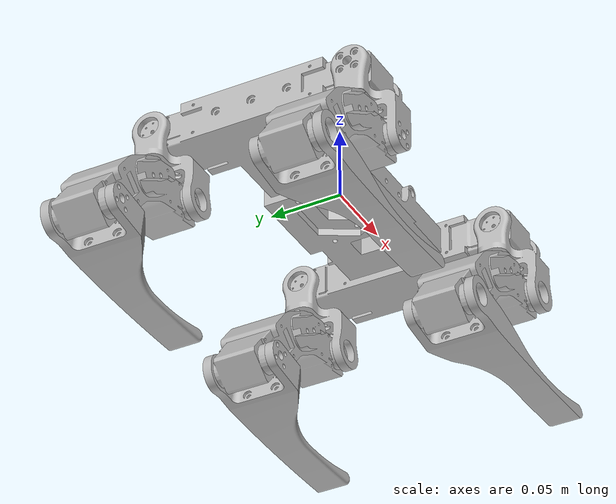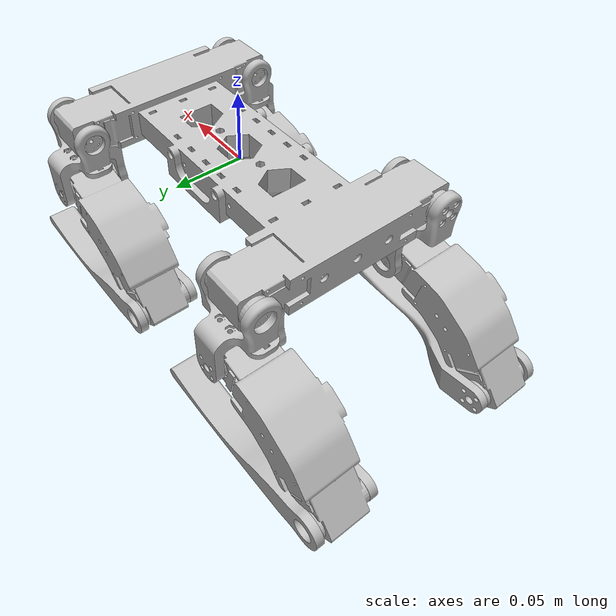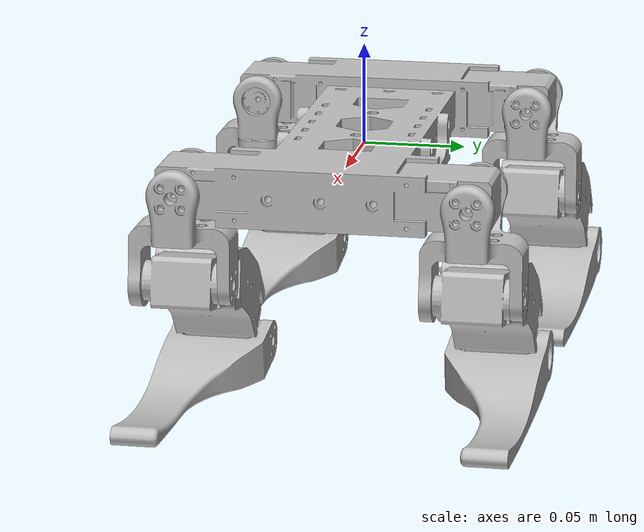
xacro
<?xml version="1.0"?>
<robot xmlns:xacro="http://www.ros.org/wiki/xacro" >
  <xacro:include filename="base.xacro"/>
  <xacro:include filename="front_left_limb.xacro"/>
  <xacro:include filename="front_right_limb.xacro"/>
  <xacro:include filename="back_left_limb.xacro"/>
  <xacro:include filename="back_right_limb.xacro"/>
</robot>

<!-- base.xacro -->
<robot xmlns:xacro="http://www.ros.org/wiki/xacro" >
  <link name="base_link"/>

  <link name="base_footprint">
    <inertial>
      <origin xyz="0 0 -0.0003" rpy="0 0 0" />
      <mass value="0.5" />
      <inertia  ixx="0.0011072933516694948" ixy="0" ixz="0" iyy="0.0022392243210121506" iyz="0" izz="0.003276402523929809" />
    </inertial>
    <visual>
      <origin
        xyz="0 0 0"
        rpy="0 0 0" />
      <geometry>
        <mesh
          filename="package://clifford_gazebo/meshes/base_footprint.STL" />
      </geometry>
      <material
        name="">
        <color
          rgba="0.75294 0.75294 0.75294 1" />
      </material>
    </visual>
    <collision>
      <origin
        xyz="0 0 0"
        rpy="0 0 0" />
      <geometry>
        <mesh
          filename="package://clifford_gazebo/meshes/base_footprint.STL" />
      </geometry>
    </collision>
  </link>

  <gazebo reference="base_footprint">
    <material>Gazebo/Orange</material>
    <gravity>1</gravity>
    <selfCollide>1</selfCollide>
  </gazebo>

  <joint name="base_joint" type="fixed">
    <origin xyz="0.0 0.0 0.0" rpy="0.0 0.0 0.0"/>
    <parent link="base_link"/>
    <child link="base_footprint"/>
    <axis xyz="0.0 0.0 0.0"/>
  </joint>
</robot>

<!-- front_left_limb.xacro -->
<robot xmlns:xacro="http://www.ros.org/wiki/xacro" >
  <link name="front_left_wrist">
    <inertial>
      <origin xyz="0.001195 0.00015872 -0.022211" rpy="0 0 0" />
      <mass value="0.4" />
      <inertia  ixx="0.0002575811927139552" ixy="0" ixz="0" iyy="0.00027465080011192705" iyz="0" izz="0.00017733037586504426" />
    </inertial>
    <visual>
      <origin
        xyz="0 0 0"
        rpy="0 0 0" />
      <geometry>
        <mesh
          filename="package://clifford_gazebo/meshes/front_left_wrist.STL" />
      </geometry>
      <material
        name="">
        <color
          rgba="0.75294 0.75294 0.75294 1" />
      </material>
    </visual>
    <collision>
      <origin
        xyz="0 0 0"
        rpy="0 0 0" />
      <geometry>
        <mesh
          filename="package://clifford_gazebo/meshes/front_left_wrist.STL" />
      </geometry>
    </collision>
  </link>

  <joint
    name="front_left_wrist_joint"
    type="revolute">
    <origin
      xyz="0.095875 0.070109 -0.00014342"
      rpy="0 0 0" />
    <parent
      link="base_footprint" />
    <child
      link="front_left_wrist" />
    <axis
      xyz="-1 0 0" />
    <limit
      lower="-2.618"
      upper="2.618"
      effort="1.5"
      velocity="10.5" />
    <dynamics damping="0.9" friction="0.9" />
  </joint>

  <link name="front_left_leg">
    <inertial>
      <origin xyz="0.02029 0.00051522 -0.049743" rpy="0 0 0" />
      <mass value="0.5" />
      <inertia  ixx="0.0006601698078507005" ixy="0" ixz="0" iyy="0.0008625781128657934" iyz="0" izz="0.0003789841729590441" />
    </inertial>
    <visual>
      <origin
        xyz="0 0 0"
        rpy="0 0 0" />
      <geometry>
        <mesh
          filename="package://clifford_gazebo/meshes/front_left_leg.STL" />
      </geometry>
      <material
        name="">
        <color
          rgba="0.75294 0.75294 0.75294 1" />
      </material>
    </visual>
    <collision>
      <origin
        xyz="0 0 0"
        rpy="0 0 0" />
      <geometry>
        <mesh
          filename="package://clifford_gazebo/meshes/front_left_leg.STL" />
      </geometry>
    </collision>
  </link>

  <joint
    name="front_left_leg_joint"
    type="revolute">
    <origin
      xyz="2.4999E-05 -6.4091E-05 -0.048"
      rpy="0 1.5708 0" />
    <parent
      link="front_left_wrist" />
    <child
      link="front_left_leg" />
    <axis
      xyz="0.0006745 1 0" />
    <limit
      lower="-2.618"
      upper="2.618"
      effort="1.5"
      velocity="10.5" />
    <dynamics damping="0.9" friction="0.9" />
  </joint>

  <link name="front_left_foot">
    <inertial>
      <origin xyz="-0.0061407 0.0056659 -0.049828" rpy="0 0 0" />
      <mass value="0.4" />
      <inertia  ixx="0.0008779825495322561" ixy="0" ixz="0" iyy="0.0008219382925804376" iyz="0" izz="0.00010416055248159151" />
    </inertial>
    <visual>
      <origin
        xyz="0 0 0"
        rpy="0 0 0" />
      <geometry>
        <mesh
          filename="package://clifford_gazebo/meshes/front_left_foot.STL" />
      </geometry>
      <material
        name="">
        <color
          rgba="0.75294 0.75294 0.75294 1" />
      </material>
    </visual>
    <collision>
      <origin
        xyz="0 0 0"
        rpy="0 0 0" />
      <geometry>
        <mesh
          filename="package://clifford_gazebo/meshes/front_left_foot.STL" />
      </geometry>
    </collision>
  </link>

  <joint name="front_left_foot_joint" type="revolute">
    <origin
      xyz="0.055376 -4.5095E-05 -0.090425"
      rpy="3.1416 0 3.1416" />
    <parent
      link="front_left_leg" />
    <child
      link="front_left_foot" />
    <axis
      xyz="-0.00081441 1 0" />
    <limit
      lower="-2.618"
      upper="2.618"
      effort="1.5"
      velocity="10.5" />
    <dynamics damping="0.9" friction="0.9" />
  </joint>

  <gazebo reference="front_left_wrist">
    <material>Gazebo/Green</material>
    <gravity>1</gravity>
    <selfCollide>1</selfCollide>
  </gazebo>

  <gazebo reference="front_left_leg">
    <material>Gazebo/Black</material>
    <gravity>1</gravity>
    <selfCollide>1</selfCollide>
  </gazebo>

  <gazebo reference="front_left_foot">
    <material>Gazebo/Green</material>
    <gravity>1</gravity>
    <selfCollide>1</selfCollide>
    <mu1>1000.5</mu1>
    <mu2>1000.5</mu2>
    <kp>1000.5</kp>
    <kd>1000.5</kd>
  </gazebo>
</robot>

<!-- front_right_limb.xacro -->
<robot xmlns:xacro="http://www.ros.org/wiki/xacro" >
  <link name="front_right_wrist">
    <inertial>
      <origin xyz="0.001145 0.00015872 -0.022211" rpy="0 0 0" />
      <mass value="0.4" />
      <inertia  ixx="0.0002575811927139552" ixy="0" ixz="0" iyy="0.00027465080011192705" iyz="0" izz="0.00017733037586504426" />
    </inertial>
    <visual>
      <origin
        xyz="0 0 0"
        rpy="0 0 0" />
      <geometry>
        <mesh
          filename="package://clifford_gazebo/meshes/front_right_wrist.STL" />
      </geometry>
      <material
        name="">
        <color
          rgba="0.75294 0.75294 0.75294 1" />
      </material>
    </visual>
    <collision>
      <origin
        xyz="0 0 0"
        rpy="0 0 0" />
      <geometry>
        <mesh
          filename="package://clifford_gazebo/meshes/front_right_wrist.STL" />
      </geometry>
    </collision>
  </link>

  <joint
    name="front_right_wrist_joint"
    type="revolute">
    <origin
      xyz="0.095875 -0.070091 0.00015658"
      rpy="0 0 0" />
    <parent
      link="base_footprint" />
    <child
      link="front_right_wrist" />
    <axis
      xyz="-1 0 0" />
    <limit
      lower="-2.618"
      upper="2.618"
      effort="1.5"
      velocity="10.5" />
    <dynamics damping="0.9" friction="0.9" />
  </joint>

  <link name="front_right_leg">
    <inertial>
      <origin xyz="0.02029 0.00051522 -0.049743" rpy="0 0 0" />
      <mass value="0.5" />
      <inertia  ixx="0.0006601698078507005" ixy="0" ixz="0" iyy="0.0008625781128657934" iyz="0" izz="0.0003789841729590441" />
    </inertial>
    <visual>
      <origin
        xyz="0 0 0"
        rpy="0 0 0" />
      <geometry>
        <mesh
          filename="package://clifford_gazebo/meshes/front_right_leg.STL" />
      </geometry>
      <material
        name="">
        <color
          rgba="0.75294 0.75294 0.75294 1" />
      </material>
    </visual>
    <collision>
      <origin
        xyz="0 0 0"
        rpy="0 0 0" />
      <geometry>
        <mesh
          filename="package://clifford_gazebo/meshes/front_right_leg.STL" />
      </geometry>
    </collision>
  </link>

  <joint
    name="front_right_leg_joint"
    type="revolute">
    <origin
      xyz="-2.5E-05 -6.4091E-05 -0.048"
      rpy="0 1.5708 0" />
    <parent
      link="front_right_wrist" />
    <child
      link="front_right_leg" />
    <axis
      xyz="0.00081441 1 0" />
    <limit
      lower="-2.618"
      upper="2.618"
      effort="1.5"
      velocity="10.5" />
    <dynamics damping="0.9" friction="0.9" />
  </joint>

  <link name="front_right_foot">
    <inertial>
      <origin xyz="-0.0061406 -0.0056159 -0.049828" rpy="0 0 0" />
      <mass value="0.4" />
      <inertia  ixx="0.0008779782398059858" ixy="0" ixz="0" iyy="0.0008219879283309588" iyz="0" izz="0.00010420587850584241" />
    </inertial>
    <visual>
      <origin
        xyz="0 0 0"
        rpy="0 0 0" />
      <geometry>
        <mesh
          filename="package://clifford_gazebo/meshes/front_right_foot.STL" />
      </geometry>
      <material
        name="">
        <color
          rgba="0.75294 0.75294 0.75294 1" />
      </material>
    </visual>
    <collision>
      <origin
        xyz="0 0 0"
        rpy="0 0 0" />
      <geometry>
        <mesh
          filename="package://clifford_gazebo/meshes/front_right_foot.STL" />
      </geometry>
    </collision>
  </link>

  <joint
    name="front_right_foot_joint"
    type="revolute">
    <origin
      xyz="0.055376 -4.5095E-05 -0.090425"
      rpy="3.1416 0 3.1416" />
    <parent
      link="front_right_leg" />
    <child
      link="front_right_foot" />
    <axis
      xyz="-0.00081441 1 0" />
    <limit
      lower="-2.618"
      upper="2.618"
      effort="1.5"
      velocity="10.5" />
    <dynamics damping="0.9" friction="0.9" />
  </joint>

  <gazebo reference="front_right_wrist">
    <material>Gazebo/Red</material>
    <gravity>1</gravity>
    <selfCollide>1</selfCollide>
  </gazebo>

  <gazebo reference="front_right_leg">
    <material>Gazebo/Black</material>
    <gravity>1</gravity>
    <selfCollide>1</selfCollide>
  </gazebo>

  <gazebo reference="front_right_foot">
    <material>Gazebo/Red</material>
    <gravity>1</gravity>
    <selfCollide>1</selfCollide>
    <mu1>1000.5</mu1>
    <mu2>1000.5</mu2>
    <kp>1000.5</kp>
    <kd>1000.5</kd>
  </gazebo>
</robot>

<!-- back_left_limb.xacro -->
<robot xmlns:xacro="http://www.ros.org/wiki/xacro" >
  <link name="back_left_wrist">
    <inertial>
      <origin xyz="0.001195 0.00015872 -0.022211" rpy="0 0 0" />
      <mass value="0.4" />
      <inertia  ixx="0.0002575811927139552" ixy="0" ixz="0" iyy="0.00027465080011192705" iyz="0" izz="0.00017733037586504426" />
    </inertial>
    <visual>
      <origin
        xyz="0 0 0"
        rpy="0 0 0" />
      <geometry>
        <mesh
          filename="package://clifford_gazebo/meshes/back_left_wrist.STL" />
      </geometry>
      <material
        name="">
        <color
          rgba="0.75294 0.75294 0.75294 1" />
      </material>
    </visual>
    <collision>
      <origin
        xyz="0 0 0"
        rpy="0 0 0" />
      <geometry>
        <mesh
          filename="package://clifford_gazebo/meshes/back_left_wrist.STL" />
      </geometry>
    </collision>
  </link>

  <joint
    name="back_left_wrist_joint"
    type="revolute">
    <origin
      xyz="-0.095875 0.070091 0.00015658"
      rpy="0 0 0" />
    <parent
      link="base_footprint" />
    <child
      link="back_left_wrist" />
    <axis
      xyz="1 0 0" />
    <limit
      lower="-2.618"
      upper="2.618"
      effort="1.5"
      velocity="10.5" />
    <dynamics damping="0.9" friction="0.9" />
  </joint>

  <link
    name="back_left_leg">
    <inertial>
      <origin
        xyz="0.02029 0.00051522 -0.049743"
        rpy="0 0 0" />
      <mass value="0.5" />
      <inertia  ixx="0.0006601698078507005" ixy="0" ixz="0" iyy="0.0008625781128657934" iyz="0" izz="0.0003789841729590441" />
    </inertial>
    <visual>
      <origin
        xyz="0 0 0"
        rpy="0 0 0" />
      <geometry>
        <mesh
          filename="package://clifford_gazebo/meshes/back_left_leg.STL" />
      </geometry>
      <material
        name="">
        <color
          rgba="0.75294 0.75294 0.75294 1" />
      </material>
    </visual>
    <collision>
      <origin
        xyz="0 0 0"
        rpy="0 0 0" />
      <geometry>
        <mesh
          filename="package://clifford_gazebo/meshes/back_left_leg.STL" />
      </geometry>
    </collision>
  </link>
  <joint
    name="back_left_leg_joint"
    type="revolute">
    <origin
      xyz="2.4999E-05 -6.4091E-05 -0.048"
      rpy="0 1.5708 0" />
    <parent
      link="back_left_wrist" />
    <child
      link="back_left_leg" />
    <axis
      xyz="0.00081441 1 0" />
    <limit
      lower="-2.618"
      upper="2.618"
      effort="1.5"
      velocity="10.5" />
    <dynamics damping="0.9" friction="0.9" />
  </joint>

  <link name="back_left_foot">
    <inertial>
      <origin xyz="-0.0061406 0.0056159 -0.049828" rpy="0 0 0" />
      <mass value="0.4" />
      <inertia  ixx="0.0008779825495322561" ixy="0" ixz="0" iyy="0.0008219382925804376" iyz="0" izz="0.00010416055248159151" />
    </inertial>
    <visual>
      <origin
        xyz="0 0 0"
        rpy="0 0 0" />
      <geometry>
        <mesh
          filename="package://clifford_gazebo/meshes/back_left_foot.STL" />
      </geometry>
      <material
        name="">
        <color
          rgba="0.75294 0.75294 0.75294 1" />
      </material>
    </visual>
    <collision>
      <origin
        xyz="0 0 0"
        rpy="0 0 0" />
      <geometry>
        <mesh
          filename="package://clifford_gazebo/meshes/back_left_foot.STL" />
      </geometry>
    </collision>
  </link>
  <joint
    name="back_left_foot_joint"
    type="revolute">
    <origin
      xyz="0.055376 -4.5095E-05 -0.090425"
      rpy="3.1416 0 3.1416" />
    <parent
      link="back_left_leg" />
    <child
      link="back_left_foot" />
    <axis
      xyz="-0.00081441 1 0" />
    <limit
      lower="-2.618"
      upper="2.618"
      effort="1.5"
      velocity="10.5" />
    <dynamics damping="0.9" friction="0.9" />
  </joint>

  <gazebo reference="back_left_wrist">
    <material>Gazebo/Purple</material>
    <gravity>1</gravity>
    <selfCollide>1</selfCollide>
  </gazebo>

  <gazebo reference="back_left_leg">
    <material>Gazebo/Black</material>
    <gravity>1</gravity>
    <selfCollide>1</selfCollide>
  </gazebo>

  <gazebo reference="back_left_foot">
    <material>Gazebo/Purple</material>
    <gravity>1</gravity>
    <selfCollide>1</selfCollide>
    <mu1>1000.5</mu1>
    <mu2>1000.5</mu2>
    <kp>1000.5</kp>
    <kd>1000.5</kd>
  </gazebo>
</robot>

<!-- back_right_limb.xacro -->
<robot xmlns:xacro="http://www.ros.org/wiki/xacro" >
  <link name="back_right_wrist">
    <inertial>
      <origin xyz="-0.001195 -0.0001949 -0.02221" rpy="0 0 0" />
      <mass value="0.4" />
      <inertia  ixx="0.0002577449173061704" ixy="0" ixz="0" iyy="0.0002748211730214112" iyz="0" izz="0.00017732372754777532" />
    </inertial>
    <visual>
      <origin
        xyz="0 0 0"
        rpy="0 0 0" />
      <geometry>
        <mesh
          filename="package://clifford_gazebo/meshes/back_right_wrist.STL" />
      </geometry>
      <material
        name="">
        <color
          rgba="0.75294 0.75294 0.75294 1" />
      </material>
    </visual>
    <collision>
      <origin
        xyz="0 0 0"
        rpy="0 0 0" />
      <geometry>
        <mesh
          filename="package://clifford_gazebo/meshes/back_right_wrist.STL" />
      </geometry>
    </collision>
  </link>

  <joint
    name="back_right_wrist_joint"
    type="revolute">
    <origin
      xyz="-0.095875 -0.070109 0.00015658"
      rpy="0 0 0" />
    <parent
      link="base_footprint" />
    <child
      link="back_right_wrist" />
    <axis
      xyz="-1 0 0" />
    <limit
      lower="-2.618"
      upper="2.618"
      effort="1.5"
      velocity="10.5" />
    <dynamics damping="0.9" friction="0.9" />
  </joint>

  <link name="back_right_leg">
    <inertial>
      <origin xyz="0.020216 0.00051528 -0.049773" rpy="0 0 0" />
      <mass value="0.5" />
      <inertia  ixx="0.0006608284339635455" ixy="0" ixz="0" iyy="0.0008622624687228709" iyz="0" izz="0.0003780096169014544" />
    </inertial>
    <visual>
      <origin
        xyz="0 0 0"
        rpy="0 0 0" />
      <geometry>
        <mesh
          filename="package://clifford_gazebo/meshes/back_right_leg.STL" />
      </geometry>
      <material
        name="">
        <color
          rgba="0.75294 0.75294 0.75294 1" />
      </material>
    </visual>
    <collision>
      <origin
        xyz="0 0 0"
        rpy="0 0 0" />
      <geometry>
        <mesh
          filename="package://clifford_gazebo/meshes/back_right_leg.STL" />
      </geometry>
    </collision>
  </link>
  <joint
    name="back_right_leg_joint"
    type="revolute">
    <origin
      xyz="-2.4999E-05 -1.4092E-05 -0.048"
      rpy="0 1.5708 0" />
    <parent
      link="back_right_wrist" />
    <child
      link="back_right_leg" />
    <axis
      xyz="0.00081441 1 0" />
    <limit
      lower="-2.618"
      upper="2.618"
      effort="1.5"
      velocity="10.5" />
    <dynamics damping="0.9" friction="0.9" />
  </joint>

  <link name="back_right_foot">
    <inertial>
      <origin xyz="-0.0061315 -0.0056259 -0.049828" rpy="0 0 0" />
      <mass value="0.4" />
      <inertia  ixx="0.0008779782398059858" ixy="0" ixz="0" iyy="0.0008219879283309588" iyz="0" izz="0.00010420587850584241" />
    </inertial>
    <visual>
      <origin
        xyz="0 0 0"
        rpy="0 0 0" />
      <geometry>
        <mesh
          filename="package://clifford_gazebo/meshes/back_right_foot.STL" />
      </geometry>
      <material
        name="">
        <color
          rgba="0.75294 0.75294 0.75294 1" />
      </material>
    </visual>
    <collision>
      <origin
        xyz="0 0 0"
        rpy="0 0 0" />
      <geometry>
        <mesh
          filename="package://clifford_gazebo/meshes/back_right_foot.STL" />
      </geometry>
    </collision>
  </link>

  <joint
    name="back_right_foot_joint"
    type="revolute">
    <origin
      xyz="0.055242 -4.4986E-05 -0.090507"
      rpy="3.1416 0 3.1416" />
    <parent
      link="back_right_leg" />
    <child
      link="back_right_foot" />
    <axis
      xyz="-0.00081441 1 0" />
    <limit
      lower="-2.618"
      upper="2.618"
      effort="1.5"
      velocity="10.5" />
    <dynamics damping="0.9" friction="0.9" />
  </joint>

  <gazebo reference="back_right_wrist">
    <material>Gazebo/Blue</material>
    <gravity>1</gravity>
    <selfCollide>1</selfCollide>
  </gazebo>

  <gazebo reference="back_right_leg">
    <material>Gazebo/Black</material>
    <gravity>1</gravity>
    <selfCollide>1</selfCollide>
  </gazebo>

  <gazebo reference="back_right_foot">
    <material>Gazebo/Blue</material>
    <gravity>1</gravity>
    <selfCollide>1</selfCollide>
    <mu1>1000.5</mu1>
    <mu2>1000.5</mu2>
    <kp>1000.5</kp>
    <kd>1000.5</kd>
  </gazebo>
</robot>
